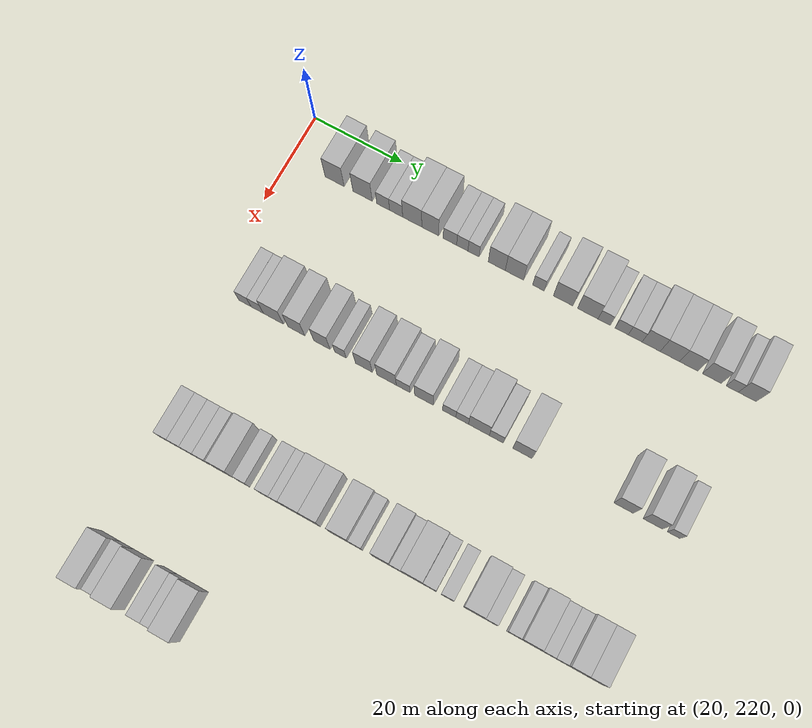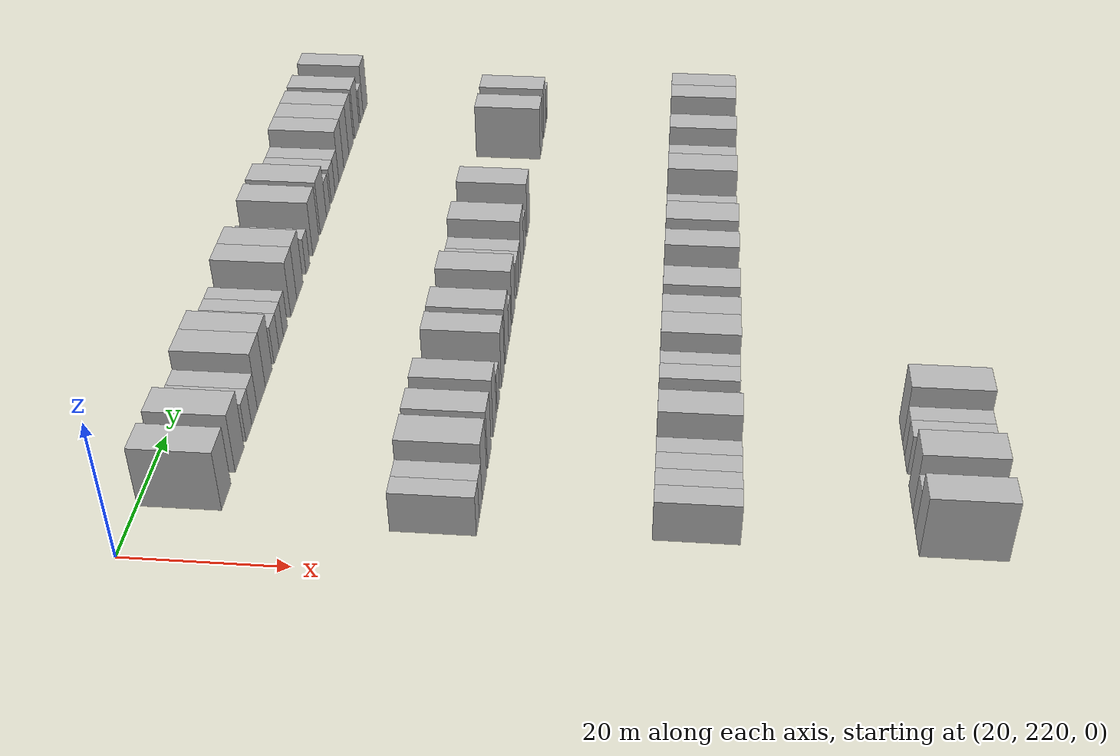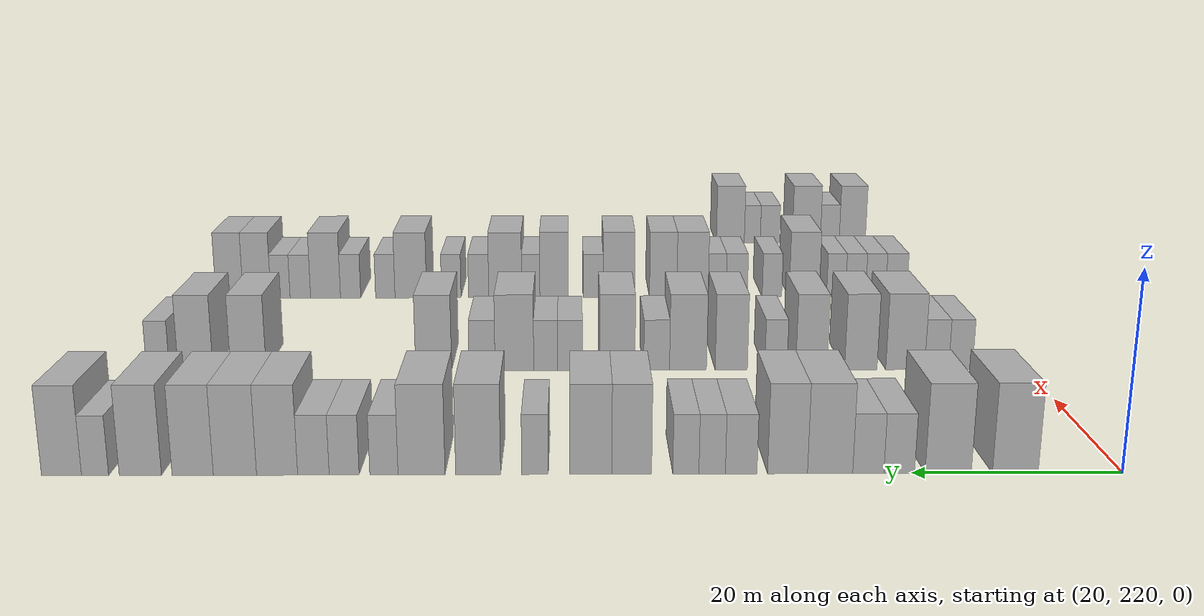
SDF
<sdf version="1.6">
 <world name="default">
  <model name="building_166">
   <static>1</static>
   <pose>25.0000 230.2021 0 0.000000 0.000000 0.000000</pose>
   <link name="link">
    <pose>0 0 4.50 0 0 0</pose>
    <collision name="collision"><geometry><box><size>10.0000 4.3413 9.0000</size></box></geometry></collision>
    <visual name="visual">
     <cast_shadows>0</cast_shadows>
     <geometry><box><size>10.0000 4.3413 9.0000</size></box></geometry>
     <material>
      <script>
       <uri>model://HANNAS_wall/materials/scripts</uri>
       <uri>model://HANNAS_wall/materials/textures</uri>
       <name>vrc/HANNAS_wall</name>
      </script>
     </material>
    </visual>
   </link>
  </model>
  <model name="building_167">
   <static>1</static>
   <pose>25.0000 236.5596 0 0.000000 0.000000 0.000000</pose>
   <link name="link">
    <pose>0 0 4.50 0 0 0</pose>
    <collision name="collision"><geometry><box><size>10.0000 4.3737 9.0000</size></box></geometry></collision>
    <visual name="visual">
     <cast_shadows>0</cast_shadows>
     <geometry><box><size>10.0000 4.3737 9.0000</size></box></geometry>
     <material>
      <script>
       <uri>model://HANNAS_wall/materials/scripts</uri>
       <uri>model://HANNAS_wall/materials/textures</uri>
       <name>vrc/HANNAS_wall</name>
      </script>
     </material>
    </visual>
   </link>
  </model>
  <model name="building_168">
   <static>1</static>
   <pose>25.0000 241.2003 0 0.000000 0.000000 0.000000</pose>
   <link name="link">
    <pose>0 0 3.00 0 0 0</pose>
    <collision name="collision"><geometry><box><size>10.0000 2.9076 6.0000</size></box></geometry></collision>
    <visual name="visual">
     <cast_shadows>0</cast_shadows>
     <geometry><box><size>10.0000 2.9076 6.0000</size></box></geometry>
     <material>
      <script>
       <uri>model://HANNAS_wall/materials/scripts</uri>
       <uri>model://HANNAS_wall/materials/textures</uri>
       <name>vrc/HANNAS_wall</name>
      </script>
     </material>
    </visual>
   </link>
  </model>
  <model name="building_169">
   <static>1</static>
   <pose>25.0000 244.1268 0 0.000000 0.000000 0.000000</pose>
   <link name="link">
    <pose>0 0 3.00 0 0 0</pose>
    <collision name="collision"><geometry><box><size>10.0000 2.9455 6.0000</size></box></geometry></collision>
    <visual name="visual">
     <cast_shadows>0</cast_shadows>
     <geometry><box><size>10.0000 2.9455 6.0000</size></box></geometry>
     <material>
      <script>
       <uri>model://HANNAS_wall/materials/scripts</uri>
       <uri>model://HANNAS_wall/materials/textures</uri>
       <name>vrc/HANNAS_wall</name>
      </script>
     </material>
    </visual>
   </link>
  </model>
  <model name="building_170">
   <static>1</static>
   <pose>25.0000 247.7401 0 0.000000 0.000000 0.000000</pose>
   <link name="link">
    <pose>0 0 4.50 0 0 0</pose>
    <collision name="collision"><geometry><box><size>10.0000 4.2810 9.0000</size></box></geometry></collision>
    <visual name="visual">
     <cast_shadows>0</cast_shadows>
     <geometry><box><size>10.0000 4.2810 9.0000</size></box></geometry>
     <material>
      <script>
       <uri>model://HANNAS_wall/materials/scripts</uri>
       <uri>model://HANNAS_wall/materials/textures</uri>
       <name>vrc/HANNAS_wall</name>
      </script>
     </material>
    </visual>
   </link>
  </model>
  <model name="building_171">
   <static>1</static>
   <pose>25.0000 251.7678 0 0.000000 0.000000 0.000000</pose>
   <link name="link">
    <pose>0 0 4.50 0 0 0</pose>
    <collision name="collision"><geometry><box><size>10.0000 3.7744 9.0000</size></box></geometry></collision>
    <visual name="visual">
     <cast_shadows>0</cast_shadows>
     <geometry><box><size>10.0000 3.7744 9.0000</size></box></geometry>
     <material>
      <script>
       <uri>model://HANNAS_wall/materials/scripts</uri>
       <uri>model://HANNAS_wall/materials/textures</uri>
       <name>vrc/HANNAS_wall</name>
      </script>
     </material>
    </visual>
   </link>
  </model>
  <model name="building_172">
   <static>1</static>
   <pose>25.0000 256.1478 0 0.000000 0.000000 0.000000</pose>
   <link name="link">
    <pose>0 0 3.00 0 0 0</pose>
    <collision name="collision"><geometry><box><size>10.0000 2.9855 6.0000</size></box></geometry></collision>
    <visual name="visual">
     <cast_shadows>0</cast_shadows>
     <geometry><box><size>10.0000 2.9855 6.0000</size></box></geometry>
     <material>
      <script>
       <uri>model://HANNAS_wall/materials/scripts</uri>
       <uri>model://HANNAS_wall/materials/textures</uri>
       <name>vrc/HANNAS_wall</name>
      </script>
     </material>
    </visual>
   </link>
  </model>
  <model name="building_173">
   <static>1</static>
   <pose>25.0000 258.8921 0 0.000000 0.000000 0.000000</pose>
   <link name="link">
    <pose>0 0 3.00 0 0 0</pose>
    <collision name="collision"><geometry><box><size>10.0000 2.5031 6.0000</size></box></geometry></collision>
    <visual name="visual">
     <cast_shadows>0</cast_shadows>
     <geometry><box><size>10.0000 2.5031 6.0000</size></box></geometry>
     <material>
      <script>
       <uri>model://HANNAS_wall/materials/scripts</uri>
       <uri>model://HANNAS_wall/materials/textures</uri>
       <name>vrc/HANNAS_wall</name>
      </script>
     </material>
    </visual>
   </link>
  </model>
  <model name="building_174">
   <static>1</static>
   <pose>25.0000 261.3764 0 0.000000 0.000000 0.000000</pose>
   <link name="link">
    <pose>0 0 3.00 0 0 0</pose>
    <collision name="collision"><geometry><box><size>10.0000 2.4656 6.0000</size></box></geometry></collision>
    <visual name="visual">
     <cast_shadows>0</cast_shadows>
     <geometry><box><size>10.0000 2.4656 6.0000</size></box></geometry>
     <material>
      <script>
       <uri>model://HANNAS_wall/materials/scripts</uri>
       <uri>model://HANNAS_wall/materials/textures</uri>
       <name>vrc/HANNAS_wall</name>
      </script>
     </material>
    </visual>
   </link>
  </model>
  <model name="building_175">
   <static>1</static>
   <pose>25.0000 266.4839 0 0.000000 0.000000 0.000000</pose>
   <link name="link">
    <pose>0 0 4.50 0 0 0</pose>
    <collision name="collision"><geometry><box><size>10.0000 3.7495 9.0000</size></box></geometry></collision>
    <visual name="visual">
     <cast_shadows>0</cast_shadows>
     <geometry><box><size>10.0000 3.7495 9.0000</size></box></geometry>
     <material>
      <script>
       <uri>model://HANNAS_wall/materials/scripts</uri>
       <uri>model://HANNAS_wall/materials/textures</uri>
       <name>vrc/HANNAS_wall</name>
      </script>
     </material>
    </visual>
   </link>
  </model>
  <model name="building_176">
   <static>1</static>
   <pose>25.0000 270.3573 0 0.000000 0.000000 0.000000</pose>
   <link name="link">
    <pose>0 0 4.50 0 0 0</pose>
    <collision name="collision"><geometry><box><size>10.0000 3.9973 9.0000</size></box></geometry></collision>
    <visual name="visual">
     <cast_shadows>0</cast_shadows>
     <geometry><box><size>10.0000 3.9973 9.0000</size></box></geometry>
     <material>
      <script>
       <uri>model://HANNAS_wall/materials/scripts</uri>
       <uri>model://HANNAS_wall/materials/textures</uri>
       <name>vrc/HANNAS_wall</name>
      </script>
     </material>
    </visual>
   </link>
  </model>
  <model name="building_177">
   <static>1</static>
   <pose>25.0000 275.6093 0 0.000000 0.000000 0.000000</pose>
   <link name="link">
    <pose>0 0 3.00 0 0 0</pose>
    <collision name="collision"><geometry><box><size>10.0000 2.5067 6.0000</size></box></geometry></collision>
    <visual name="visual">
     <cast_shadows>0</cast_shadows>
     <geometry><box><size>10.0000 2.5067 6.0000</size></box></geometry>
     <material>
      <script>
       <uri>model://HANNAS_wall/materials/scripts</uri>
       <uri>model://HANNAS_wall/materials/textures</uri>
       <name>vrc/HANNAS_wall</name>
      </script>
     </material>
    </visual>
   </link>
  </model>
  <model name="building_178">
   <static>1</static>
   <pose>25.0000 280.9778 0 0.000000 0.000000 0.000000</pose>
   <link name="link">
    <pose>0 0 4.50 0 0 0</pose>
    <collision name="collision"><geometry><box><size>10.0000 4.2303 9.0000</size></box></geometry></collision>
    <visual name="visual">
     <cast_shadows>0</cast_shadows>
     <geometry><box><size>10.0000 4.2303 9.0000</size></box></geometry>
     <material>
      <script>
       <uri>model://HANNAS_wall/materials/scripts</uri>
       <uri>model://HANNAS_wall/materials/textures</uri>
       <name>vrc/HANNAS_wall</name>
      </script>
     </material>
    </visual>
   </link>
  </model>
  <model name="building_179">
   <static>1</static>
   <pose>25.0000 286.3091 0 0.000000 0.000000 0.000000</pose>
   <link name="link">
    <pose>0 0 4.50 0 0 0</pose>
    <collision name="collision"><geometry><box><size>10.0000 4.4323 9.0000</size></box></geometry></collision>
    <visual name="visual">
     <cast_shadows>0</cast_shadows>
     <geometry><box><size>10.0000 4.4323 9.0000</size></box></geometry>
     <material>
      <script>
       <uri>model://HANNAS_wall/materials/scripts</uri>
       <uri>model://HANNAS_wall/materials/textures</uri>
       <name>vrc/HANNAS_wall</name>
      </script>
     </material>
    </visual>
   </link>
  </model>
  <model name="building_180">
   <static>1</static>
   <pose>25.0000 289.8551 0 0.000000 0.000000 0.000000</pose>
   <link name="link">
    <pose>0 0 3.00 0 0 0</pose>
    <collision name="collision"><geometry><box><size>10.0000 2.6596 6.0000</size></box></geometry></collision>
    <visual name="visual">
     <cast_shadows>0</cast_shadows>
     <geometry><box><size>10.0000 2.6596 6.0000</size></box></geometry>
     <material>
      <script>
       <uri>model://HANNAS_wall/materials/scripts</uri>
       <uri>model://HANNAS_wall/materials/textures</uri>
       <name>vrc/HANNAS_wall</name>
      </script>
     </material>
    </visual>
   </link>
  </model>
  <model name="building_181">
   <static>1</static>
   <pose>25.0000 293.5975 0 0.000000 0.000000 0.000000</pose>
   <link name="link">
    <pose>0 0 3.00 0 0 0</pose>
    <collision name="collision"><geometry><box><size>10.0000 2.8252 6.0000</size></box></geometry></collision>
    <visual name="visual">
     <cast_shadows>0</cast_shadows>
     <geometry><box><size>10.0000 2.8252 6.0000</size></box></geometry>
     <material>
      <script>
       <uri>model://HANNAS_wall/materials/scripts</uri>
       <uri>model://HANNAS_wall/materials/textures</uri>
       <name>vrc/HANNAS_wall</name>
      </script>
     </material>
    </visual>
   </link>
  </model>
  <model name="building_182">
   <static>1</static>
   <pose>25.0000 296.4953 0 0.000000 0.000000 0.000000</pose>
   <link name="link">
    <pose>0 0 3.00 0 0 0</pose>
    <collision name="collision"><geometry><box><size>10.0000 2.9705 6.0000</size></box></geometry></collision>
    <visual name="visual">
     <cast_shadows>0</cast_shadows>
     <geometry><box><size>10.0000 2.9705 6.0000</size></box></geometry>
     <material>
      <script>
       <uri>model://HANNAS_wall/materials/scripts</uri>
       <uri>model://HANNAS_wall/materials/textures</uri>
       <name>vrc/HANNAS_wall</name>
      </script>
     </material>
    </visual>
   </link>
  </model>
  <model name="building_183">
   <static>1</static>
   <pose>25.0000 299.9122 0 0.000000 0.000000 0.000000</pose>
   <link name="link">
    <pose>0 0 4.50 0 0 0</pose>
    <collision name="collision"><geometry><box><size>10.0000 3.8633 9.0000</size></box></geometry></collision>
    <visual name="visual">
     <cast_shadows>0</cast_shadows>
     <geometry><box><size>10.0000 3.8633 9.0000</size></box></geometry>
     <material>
      <script>
       <uri>model://HANNAS_wall/materials/scripts</uri>
       <uri>model://HANNAS_wall/materials/textures</uri>
       <name>vrc/HANNAS_wall</name>
      </script>
     </material>
    </visual>
   </link>
  </model>
  <model name="building_184">
   <static>1</static>
   <pose>25.0000 303.8792 0 0.000000 0.000000 0.000000</pose>
   <link name="link">
    <pose>0 0 4.50 0 0 0</pose>
    <collision name="collision"><geometry><box><size>10.0000 4.0708 9.0000</size></box></geometry></collision>
    <visual name="visual">
     <cast_shadows>0</cast_shadows>
     <geometry><box><size>10.0000 4.0708 9.0000</size></box></geometry>
     <material>
      <script>
       <uri>model://HANNAS_wall/materials/scripts</uri>
       <uri>model://HANNAS_wall/materials/textures</uri>
       <name>vrc/HANNAS_wall</name>
      </script>
     </material>
    </visual>
   </link>
  </model>
  <model name="building_185">
   <static>1</static>
   <pose>25.0000 307.8496 0 0.000000 0.000000 0.000000</pose>
   <link name="link">
    <pose>0 0 4.50 0 0 0</pose>
    <collision name="collision"><geometry><box><size>10.0000 3.8699 9.0000</size></box></geometry></collision>
    <visual name="visual">
     <cast_shadows>0</cast_shadows>
     <geometry><box><size>10.0000 3.8699 9.0000</size></box></geometry>
     <material>
      <script>
       <uri>model://HANNAS_wall/materials/scripts</uri>
       <uri>model://HANNAS_wall/materials/textures</uri>
       <name>vrc/HANNAS_wall</name>
      </script>
     </material>
    </visual>
   </link>
  </model>
  <model name="building_186">
   <static>1</static>
   <pose>25.0000 312.7663 0 0.000000 0.000000 0.000000</pose>
   <link name="link">
    <pose>0 0 4.50 0 0 0</pose>
    <collision name="collision"><geometry><box><size>10.0000 3.9637 9.0000</size></box></geometry></collision>
    <visual name="visual">
     <cast_shadows>0</cast_shadows>
     <geometry><box><size>10.0000 3.9637 9.0000</size></box></geometry>
     <material>
      <script>
       <uri>model://HANNAS_wall/materials/scripts</uri>
       <uri>model://HANNAS_wall/materials/textures</uri>
       <name>vrc/HANNAS_wall</name>
      </script>
     </material>
    </visual>
   </link>
  </model>
  <model name="building_187">
   <static>1</static>
   <pose>25.0000 317.0218 0 0.000000 0.000000 0.000000</pose>
   <link name="link">
    <pose>0 0 3.00 0 0 0</pose>
    <collision name="collision"><geometry><box><size>10.0000 2.5471 6.0000</size></box></geometry></collision>
    <visual name="visual">
     <cast_shadows>0</cast_shadows>
     <geometry><box><size>10.0000 2.5471 6.0000</size></box></geometry>
     <material>
      <script>
       <uri>model://HANNAS_wall/materials/scripts</uri>
       <uri>model://HANNAS_wall/materials/textures</uri>
       <name>vrc/HANNAS_wall</name>
      </script>
     </material>
    </visual>
   </link>
  </model>
  <model name="building_188">
   <static>1</static>
   <pose>25.0000 320.1728 0 0.000000 0.000000 0.000000</pose>
   <link name="link">
    <pose>0 0 4.50 0 0 0</pose>
    <collision name="collision"><geometry><box><size>10.0000 3.7549 9.0000</size></box></geometry></collision>
    <visual name="visual">
     <cast_shadows>0</cast_shadows>
     <geometry><box><size>10.0000 3.7549 9.0000</size></box></geometry>
     <material>
      <script>
       <uri>model://HANNAS_wall/materials/scripts</uri>
       <uri>model://HANNAS_wall/materials/textures</uri>
       <name>vrc/HANNAS_wall</name>
      </script>
     </material>
    </visual>
   </link>
  </model>
  <model name="building_395">
   <static>1</static>
   <pose>55.0000 227.5846 0 0.000000 0.000000 0.000000</pose>
   <link name="link">
    <pose>0 0 3.00 0 0 0</pose>
    <collision name="collision"><geometry><box><size>10.0000 2.7325 6.0000</size></box></geometry></collision>
    <visual name="visual">
     <cast_shadows>0</cast_shadows>
     <geometry><box><size>10.0000 2.7325 6.0000</size></box></geometry>
     <material>
      <script>
       <uri>model://HANNAS_wall/materials/scripts</uri>
       <uri>model://HANNAS_wall/materials/textures</uri>
       <name>vrc/HANNAS_wall</name>
      </script>
     </material>
    </visual>
   </link>
  </model>
  <model name="building_396">
   <static>1</static>
   <pose>55.0000 230.3314 0 0.000000 0.000000 0.000000</pose>
   <link name="link">
    <pose>0 0 3.00 0 0 0</pose>
    <collision name="collision"><geometry><box><size>10.0000 2.7609 6.0000</size></box></geometry></collision>
    <visual name="visual">
     <cast_shadows>0</cast_shadows>
     <geometry><box><size>10.0000 2.7609 6.0000</size></box></geometry>
     <material>
      <script>
       <uri>model://HANNAS_wall/materials/scripts</uri>
       <uri>model://HANNAS_wall/materials/textures</uri>
       <name>vrc/HANNAS_wall</name>
      </script>
     </material>
    </visual>
   </link>
  </model>
  <model name="building_397">
   <static>1</static>
   <pose>55.0000 233.9455 0 0.000000 0.000000 0.000000</pose>
   <link name="link">
    <pose>0 0 4.50 0 0 0</pose>
    <collision name="collision"><geometry><box><size>10.0000 4.4673 9.0000</size></box></geometry></collision>
    <visual name="visual">
     <cast_shadows>0</cast_shadows>
     <geometry><box><size>10.0000 4.4673 9.0000</size></box></geometry>
     <material>
      <script>
       <uri>model://HANNAS_wall/materials/scripts</uri>
       <uri>model://HANNAS_wall/materials/textures</uri>
       <name>vrc/HANNAS_wall</name>
      </script>
     </material>
    </visual>
   </link>
  </model>
  <model name="building_398">
   <static>1</static>
   <pose>55.0000 239.0414 0 0.000000 0.000000 0.000000</pose>
   <link name="link">
    <pose>0 0 4.50 0 0 0</pose>
    <collision name="collision"><geometry><box><size>10.0000 3.7247 9.0000</size></box></geometry></collision>
    <visual name="visual">
     <cast_shadows>0</cast_shadows>
     <geometry><box><size>10.0000 3.7247 9.0000</size></box></geometry>
     <material>
      <script>
       <uri>model://HANNAS_wall/materials/scripts</uri>
       <uri>model://HANNAS_wall/materials/textures</uri>
       <name>vrc/HANNAS_wall</name>
      </script>
     </material>
    </visual>
   </link>
  </model>
  <model name="building_399">
   <static>1</static>
   <pose>55.0000 244.7040 0 0.000000 0.000000 0.000000</pose>
   <link name="link">
    <pose>0 0 4.50 0 0 0</pose>
    <collision name="collision"><geometry><box><size>10.0000 3.6004 9.0000</size></box></geometry></collision>
    <visual name="visual">
     <cast_shadows>0</cast_shadows>
     <geometry><box><size>10.0000 3.6004 9.0000</size></box></geometry>
     <material>
      <script>
       <uri>model://HANNAS_wall/materials/scripts</uri>
       <uri>model://HANNAS_wall/materials/textures</uri>
       <name>vrc/HANNAS_wall</name>
      </script>
     </material>
    </visual>
   </link>
  </model>
  <model name="building_400">
   <static>1</static>
   <pose>55.0000 248.7788 0 0.000000 0.000000 0.000000</pose>
   <link name="link">
    <pose>0 0 3.00 0 0 0</pose>
    <collision name="collision"><geometry><box><size>10.0000 2.5493 6.0000</size></box></geometry></collision>
    <visual name="visual">
     <cast_shadows>0</cast_shadows>
     <geometry><box><size>10.0000 2.5493 6.0000</size></box></geometry>
     <material>
      <script>
       <uri>model://HANNAS_wall/materials/scripts</uri>
       <uri>model://HANNAS_wall/materials/textures</uri>
       <name>vrc/HANNAS_wall</name>
      </script>
     </material>
    </visual>
   </link>
  </model>
  <model name="building_401">
   <static>1</static>
   <pose>55.0000 253.8984 0 0.000000 0.000000 0.000000</pose>
   <link name="link">
    <pose>0 0 4.50 0 0 0</pose>
    <collision name="collision"><geometry><box><size>10.0000 3.6897 9.0000</size></box></geometry></collision>
    <visual name="visual">
     <cast_shadows>0</cast_shadows>
     <geometry><box><size>10.0000 3.6897 9.0000</size></box></geometry>
     <material>
      <script>
       <uri>model://HANNAS_wall/materials/scripts</uri>
       <uri>model://HANNAS_wall/materials/textures</uri>
       <name>vrc/HANNAS_wall</name>
      </script>
     </material>
    </visual>
   </link>
  </model>
  <model name="building_402">
   <static>1</static>
   <pose>55.0000 258.8559 0 0.000000 0.000000 0.000000</pose>
   <link name="link">
    <pose>0 0 4.50 0 0 0</pose>
    <collision name="collision"><geometry><box><size>10.0000 4.2253 9.0000</size></box></geometry></collision>
    <visual name="visual">
     <cast_shadows>0</cast_shadows>
     <geometry><box><size>10.0000 4.2253 9.0000</size></box></geometry>
     <material>
      <script>
       <uri>model://HANNAS_wall/materials/scripts</uri>
       <uri>model://HANNAS_wall/materials/textures</uri>
       <name>vrc/HANNAS_wall</name>
      </script>
     </material>
    </visual>
   </link>
  </model>
  <model name="building_403">
   <static>1</static>
   <pose>55.0000 262.4476 0 0.000000 0.000000 0.000000</pose>
   <link name="link">
    <pose>0 0 3.00 0 0 0</pose>
    <collision name="collision"><geometry><box><size>10.0000 2.9582 6.0000</size></box></geometry></collision>
    <visual name="visual">
     <cast_shadows>0</cast_shadows>
     <geometry><box><size>10.0000 2.9582 6.0000</size></box></geometry>
     <material>
      <script>
       <uri>model://HANNAS_wall/materials/scripts</uri>
       <uri>model://HANNAS_wall/materials/textures</uri>
       <name>vrc/HANNAS_wall</name>
      </script>
     </material>
    </visual>
   </link>
  </model>
  <model name="building_404">
   <static>1</static>
   <pose>55.0000 266.9340 0 0.000000 0.000000 0.000000</pose>
   <link name="link">
    <pose>0 0 4.50 0 0 0</pose>
    <collision name="collision"><geometry><box><size>10.0000 4.0146 9.0000</size></box></geometry></collision>
    <visual name="visual">
     <cast_shadows>0</cast_shadows>
     <geometry><box><size>10.0000 4.0146 9.0000</size></box></geometry>
     <material>
      <script>
       <uri>model://HANNAS_wall/materials/scripts</uri>
       <uri>model://HANNAS_wall/materials/textures</uri>
       <name>vrc/HANNAS_wall</name>
      </script>
     </material>
    </visual>
   </link>
  </model>
  <model name="building_405">
   <static>1</static>
   <pose>55.0000 272.3710 0 0.000000 0.000000 0.000000</pose>
   <link name="link">
    <pose>0 0 3.00 0 0 0</pose>
    <collision name="collision"><geometry><box><size>10.0000 2.8595 6.0000</size></box></geometry></collision>
    <visual name="visual">
     <cast_shadows>0</cast_shadows>
     <geometry><box><size>10.0000 2.8595 6.0000</size></box></geometry>
     <material>
      <script>
       <uri>model://HANNAS_wall/materials/scripts</uri>
       <uri>model://HANNAS_wall/materials/textures</uri>
       <name>vrc/HANNAS_wall</name>
      </script>
     </material>
    </visual>
   </link>
  </model>
  <model name="building_406">
   <static>1</static>
   <pose>55.0000 275.1549 0 0.000000 0.000000 0.000000</pose>
   <link name="link">
    <pose>0 0 3.00 0 0 0</pose>
    <collision name="collision"><geometry><box><size>10.0000 2.7083 6.0000</size></box></geometry></collision>
    <visual name="visual">
     <cast_shadows>0</cast_shadows>
     <geometry><box><size>10.0000 2.7083 6.0000</size></box></geometry>
     <material>
      <script>
       <uri>model://HANNAS_wall/materials/scripts</uri>
       <uri>model://HANNAS_wall/materials/textures</uri>
       <name>vrc/HANNAS_wall</name>
      </script>
     </material>
    </visual>
   </link>
  </model>
  <model name="building_407">
   <static>1</static>
   <pose>55.0000 278.7174 0 0.000000 0.000000 0.000000</pose>
   <link name="link">
    <pose>0 0 4.50 0 0 0</pose>
    <collision name="collision"><geometry><box><size>10.0000 4.4168 9.0000</size></box></geometry></collision>
    <visual name="visual">
     <cast_shadows>0</cast_shadows>
     <geometry><box><size>10.0000 4.4168 9.0000</size></box></geometry>
     <material>
      <script>
       <uri>model://HANNAS_wall/materials/scripts</uri>
       <uri>model://HANNAS_wall/materials/textures</uri>
       <name>vrc/HANNAS_wall</name>
      </script>
     </material>
    </visual>
   </link>
  </model>
  <model name="building_408">
   <static>1</static>
   <pose>55.0000 282.4075 0 0.000000 0.000000 0.000000</pose>
   <link name="link">
    <pose>0 0 3.00 0 0 0</pose>
    <collision name="collision"><geometry><box><size>10.0000 2.9633 6.0000</size></box></geometry></collision>
    <visual name="visual">
     <cast_shadows>0</cast_shadows>
     <geometry><box><size>10.0000 2.9633 6.0000</size></box></geometry>
     <material>
      <script>
       <uri>model://HANNAS_wall/materials/scripts</uri>
       <uri>model://HANNAS_wall/materials/textures</uri>
       <name>vrc/HANNAS_wall</name>
      </script>
     </material>
    </visual>
   </link>
  </model>
  <model name="building_409">
   <static>1</static>
   <pose>55.0000 287.9423 0 0.000000 0.000000 0.000000</pose>
   <link name="link">
    <pose>0 0 4.50 0 0 0</pose>
    <collision name="collision"><geometry><box><size>10.0000 4.1063 9.0000</size></box></geometry></collision>
    <visual name="visual">
     <cast_shadows>0</cast_shadows>
     <geometry><box><size>10.0000 4.1063 9.0000</size></box></geometry>
     <material>
      <script>
       <uri>model://HANNAS_wall/materials/scripts</uri>
       <uri>model://HANNAS_wall/materials/textures</uri>
       <name>vrc/HANNAS_wall</name>
      </script>
     </material>
    </visual>
   </link>
  </model>
  <model name="building_410">
   <static>1</static>
   <pose>55.0000 309.0891 0 0.000000 0.000000 0.000000</pose>
   <link name="link">
    <pose>0 0 4.50 0 0 0</pose>
    <collision name="collision"><geometry><box><size>10.0000 4.0624 9.0000</size></box></geometry></collision>
    <visual name="visual">
     <cast_shadows>0</cast_shadows>
     <geometry><box><size>10.0000 4.0624 9.0000</size></box></geometry>
     <material>
      <script>
       <uri>model://HANNAS_wall/materials/scripts</uri>
       <uri>model://HANNAS_wall/materials/textures</uri>
       <name>vrc/HANNAS_wall</name>
      </script>
     </material>
    </visual>
   </link>
  </model>
  <model name="building_411">
   <static>1</static>
   <pose>55.0000 315.1073 0 0.000000 0.000000 0.000000</pose>
   <link name="link">
    <pose>0 0 4.50 0 0 0</pose>
    <collision name="collision"><geometry><box><size>10.0000 3.9741 9.0000</size></box></geometry></collision>
    <visual name="visual">
     <cast_shadows>0</cast_shadows>
     <geometry><box><size>10.0000 3.9741 9.0000</size></box></geometry>
     <material>
      <script>
       <uri>model://HANNAS_wall/materials/scripts</uri>
       <uri>model://HANNAS_wall/materials/textures</uri>
       <name>vrc/HANNAS_wall</name>
      </script>
     </material>
    </visual>
   </link>
  </model>
  <model name="building_412">
   <static>1</static>
   <pose>55.0000 319.3918 0 0.000000 0.000000 0.000000</pose>
   <link name="link">
    <pose>0 0 3.00 0 0 0</pose>
    <collision name="collision"><geometry><box><size>10.0000 2.5948 6.0000</size></box></geometry></collision>
    <visual name="visual">
     <cast_shadows>0</cast_shadows>
     <geometry><box><size>10.0000 2.5948 6.0000</size></box></geometry>
     <material>
      <script>
       <uri>model://HANNAS_wall/materials/scripts</uri>
       <uri>model://HANNAS_wall/materials/textures</uri>
       <name>vrc/HANNAS_wall</name>
      </script>
     </material>
    </visual>
   </link>
  </model>
  <model name="building_614">
   <static>1</static>
   <pose>85.0000 228.4832 0 0.000000 0.000000 0.000000</pose>
   <link name="link">
    <pose>0 0 3.00 0 0 0</pose>
    <collision name="collision"><geometry><box><size>10.0000 2.8495 6.0000</size></box></geometry></collision>
    <visual name="visual">
     <cast_shadows>0</cast_shadows>
     <geometry><box><size>10.0000 2.8495 6.0000</size></box></geometry>
     <material>
      <script>
       <uri>model://HANNAS_wall/materials/scripts</uri>
       <uri>model://HANNAS_wall/materials/textures</uri>
       <name>vrc/HANNAS_wall</name>
      </script>
     </material>
    </visual>
   </link>
  </model>
  <model name="building_615">
   <static>1</static>
   <pose>85.0000 231.2520 0 0.000000 0.000000 0.000000</pose>
   <link name="link">
    <pose>0 0 3.00 0 0 0</pose>
    <collision name="collision"><geometry><box><size>10.0000 2.6881 6.0000</size></box></geometry></collision>
    <visual name="visual">
     <cast_shadows>0</cast_shadows>
     <geometry><box><size>10.0000 2.6881 6.0000</size></box></geometry>
     <material>
      <script>
       <uri>model://HANNAS_wall/materials/scripts</uri>
       <uri>model://HANNAS_wall/materials/textures</uri>
       <name>vrc/HANNAS_wall</name>
      </script>
     </material>
    </visual>
   </link>
  </model>
  <model name="building_616">
   <static>1</static>
   <pose>85.0000 233.9584 0 0.000000 0.000000 0.000000</pose>
   <link name="link">
    <pose>0 0 3.00 0 0 0</pose>
    <collision name="collision"><geometry><box><size>10.0000 2.7247 6.0000</size></box></geometry></collision>
    <visual name="visual">
     <cast_shadows>0</cast_shadows>
     <geometry><box><size>10.0000 2.7247 6.0000</size></box></geometry>
     <material>
      <script>
       <uri>model://HANNAS_wall/materials/scripts</uri>
       <uri>model://HANNAS_wall/materials/textures</uri>
       <name>vrc/HANNAS_wall</name>
      </script>
     </material>
    </visual>
   </link>
  </model>
  <model name="building_617">
   <static>1</static>
   <pose>85.0000 236.5927 0 0.000000 0.000000 0.000000</pose>
   <link name="link">
    <pose>0 0 3.00 0 0 0</pose>
    <collision name="collision"><geometry><box><size>10.0000 2.5439 6.0000</size></box></geometry></collision>
    <visual name="visual">
     <cast_shadows>0</cast_shadows>
     <geometry><box><size>10.0000 2.5439 6.0000</size></box></geometry>
     <material>
      <script>
       <uri>model://HANNAS_wall/materials/scripts</uri>
       <uri>model://HANNAS_wall/materials/textures</uri>
       <name>vrc/HANNAS_wall</name>
      </script>
     </material>
    </visual>
   </link>
  </model>
  <model name="building_618">
   <static>1</static>
   <pose>85.0000 240.8892 0 0.000000 0.000000 0.000000</pose>
   <link name="link">
    <pose>0 0 4.50 0 0 0</pose>
    <collision name="collision"><geometry><box><size>10.0000 4.0491 9.0000</size></box></geometry></collision>
    <visual name="visual">
     <cast_shadows>0</cast_shadows>
     <geometry><box><size>10.0000 4.0491 9.0000</size></box></geometry>
     <material>
      <script>
       <uri>model://HANNAS_wall/materials/scripts</uri>
       <uri>model://HANNAS_wall/materials/textures</uri>
       <name>vrc/HANNAS_wall</name>
      </script>
     </material>
    </visual>
   </link>
  </model>
  <model name="building_619">
   <static>1</static>
   <pose>85.0000 245.2282 0 0.000000 0.000000 0.000000</pose>
   <link name="link">
    <pose>0 0 3.00 0 0 0</pose>
    <collision name="collision"><geometry><box><size>10.0000 2.6290 6.0000</size></box></geometry></collision>
    <visual name="visual">
     <cast_shadows>0</cast_shadows>
     <geometry><box><size>10.0000 2.6290 6.0000</size></box></geometry>
     <material>
      <script>
       <uri>model://HANNAS_wall/materials/scripts</uri>
       <uri>model://HANNAS_wall/materials/textures</uri>
       <name>vrc/HANNAS_wall</name>
      </script>
     </material>
    </visual>
   </link>
  </model>
  <model name="building_620">
   <static>1</static>
   <pose>85.0000 249.9813 0 0.000000 0.000000 0.000000</pose>
   <link name="link">
    <pose>0 0 3.00 0 0 0</pose>
    <collision name="collision"><geometry><box><size>10.0000 2.8772 6.0000</size></box></geometry></collision>
    <visual name="visual">
     <cast_shadows>0</cast_shadows>
     <geometry><box><size>10.0000 2.8772 6.0000</size></box></geometry>
     <material>
      <script>
       <uri>model://HANNAS_wall/materials/scripts</uri>
       <uri>model://HANNAS_wall/materials/textures</uri>
       <name>vrc/HANNAS_wall</name>
      </script>
     </material>
    </visual>
   </link>
  </model>
  <model name="building_621">
   <static>1</static>
   <pose>85.0000 252.6221 0 0.000000 0.000000 0.000000</pose>
   <link name="link">
    <pose>0 0 3.00 0 0 0</pose>
    <collision name="collision"><geometry><box><size>10.0000 2.4045 6.0000</size></box></geometry></collision>
    <visual name="visual">
     <cast_shadows>0</cast_shadows>
     <geometry><box><size>10.0000 2.4045 6.0000</size></box></geometry>
     <material>
      <script>
       <uri>model://HANNAS_wall/materials/scripts</uri>
       <uri>model://HANNAS_wall/materials/textures</uri>
       <name>vrc/HANNAS_wall</name>
      </script>
     </material>
    </visual>
   </link>
  </model>
  <model name="building_622">
   <static>1</static>
   <pose>85.0000 255.9319 0 0.000000 0.000000 0.000000</pose>
   <link name="link">
    <pose>0 0 4.50 0 0 0</pose>
    <collision name="collision"><geometry><box><size>10.0000 4.2151 9.0000</size></box></geometry></collision>
    <visual name="visual">
     <cast_shadows>0</cast_shadows>
     <geometry><box><size>10.0000 4.2151 9.0000</size></box></geometry>
     <material>
      <script>
       <uri>model://HANNAS_wall/materials/scripts</uri>
       <uri>model://HANNAS_wall/materials/textures</uri>
       <name>vrc/HANNAS_wall</name>
      </script>
     </material>
    </visual>
   </link>
  </model>
  <model name="building_623">
   <static>1</static>
   <pose>85.0000 259.8762 0 0.000000 0.000000 0.000000</pose>
   <link name="link">
    <pose>0 0 4.50 0 0 0</pose>
    <collision name="collision"><geometry><box><size>10.0000 3.6735 9.0000</size></box></geometry></collision>
    <visual name="visual">
     <cast_shadows>0</cast_shadows>
     <geometry><box><size>10.0000 3.6735 9.0000</size></box></geometry>
     <material>
      <script>
       <uri>model://HANNAS_wall/materials/scripts</uri>
       <uri>model://HANNAS_wall/materials/textures</uri>
       <name>vrc/HANNAS_wall</name>
      </script>
     </material>
    </visual>
   </link>
  </model>
  <model name="building_624">
   <static>1</static>
   <pose>85.0000 265.8314 0 0.000000 0.000000 0.000000</pose>
   <link name="link">
    <pose>0 0 4.50 0 0 0</pose>
    <collision name="collision"><geometry><box><size>10.0000 4.2368 9.0000</size></box></geometry></collision>
    <visual name="visual">
     <cast_shadows>0</cast_shadows>
     <geometry><box><size>10.0000 4.2368 9.0000</size></box></geometry>
     <material>
      <script>
       <uri>model://HANNAS_wall/materials/scripts</uri>
       <uri>model://HANNAS_wall/materials/textures</uri>
       <name>vrc/HANNAS_wall</name>
      </script>
     </material>
    </visual>
   </link>
  </model>
  <model name="building_625">
   <static>1</static>
   <pose>85.0000 269.2992 0 0.000000 0.000000 0.000000</pose>
   <link name="link">
    <pose>0 0 3.00 0 0 0</pose>
    <collision name="collision"><geometry><box><size>10.0000 2.6987 6.0000</size></box></geometry></collision>
    <visual name="visual">
     <cast_shadows>0</cast_shadows>
     <geometry><box><size>10.0000 2.6987 6.0000</size></box></geometry>
     <material>
      <script>
       <uri>model://HANNAS_wall/materials/scripts</uri>
       <uri>model://HANNAS_wall/materials/textures</uri>
       <name>vrc/HANNAS_wall</name>
      </script>
     </material>
    </visual>
   </link>
  </model>
  <model name="building_626">
   <static>1</static>
   <pose>85.0000 274.5497 0 0.000000 0.000000 0.000000</pose>
   <link name="link">
    <pose>0 0 4.50 0 0 0</pose>
    <collision name="collision"><geometry><box><size>10.0000 3.8023 9.0000</size></box></geometry></collision>
    <visual name="visual">
     <cast_shadows>0</cast_shadows>
     <geometry><box><size>10.0000 3.8023 9.0000</size></box></geometry>
     <material>
      <script>
       <uri>model://HANNAS_wall/materials/scripts</uri>
       <uri>model://HANNAS_wall/materials/textures</uri>
       <name>vrc/HANNAS_wall</name>
      </script>
     </material>
    </visual>
   </link>
  </model>
  <model name="building_627">
   <static>1</static>
   <pose>85.0000 277.6698 0 0.000000 0.000000 0.000000</pose>
   <link name="link">
    <pose>0 0 3.00 0 0 0</pose>
    <collision name="collision"><geometry><box><size>10.0000 2.4379 6.0000</size></box></geometry></collision>
    <visual name="visual">
     <cast_shadows>0</cast_shadows>
     <geometry><box><size>10.0000 2.4379 6.0000</size></box></geometry>
     <material>
      <script>
       <uri>model://HANNAS_wall/materials/scripts</uri>
       <uri>model://HANNAS_wall/materials/textures</uri>
       <name>vrc/HANNAS_wall</name>
      </script>
     </material>
    </visual>
   </link>
  </model>
  <model name="building_628">
   <static>1</static>
   <pose>85.0000 281.1035 0 0.000000 0.000000 0.000000</pose>
   <link name="link">
    <pose>0 0 4.50 0 0 0</pose>
    <collision name="collision"><geometry><box><size>10.0000 4.4294 9.0000</size></box></geometry></collision>
    <visual name="visual">
     <cast_shadows>0</cast_shadows>
     <geometry><box><size>10.0000 4.4294 9.0000</size></box></geometry>
     <material>
      <script>
       <uri>model://HANNAS_wall/materials/scripts</uri>
       <uri>model://HANNAS_wall/materials/textures</uri>
       <name>vrc/HANNAS_wall</name>
      </script>
     </material>
    </visual>
   </link>
  </model>
  <model name="building_629">
   <static>1</static>
   <pose>85.0000 284.6812 0 0.000000 0.000000 0.000000</pose>
   <link name="link">
    <pose>0 0 3.00 0 0 0</pose>
    <collision name="collision"><geometry><box><size>10.0000 2.7260 6.0000</size></box></geometry></collision>
    <visual name="visual">
     <cast_shadows>0</cast_shadows>
     <geometry><box><size>10.0000 2.7260 6.0000</size></box></geometry>
     <material>
      <script>
       <uri>model://HANNAS_wall/materials/scripts</uri>
       <uri>model://HANNAS_wall/materials/textures</uri>
       <name>vrc/HANNAS_wall</name>
      </script>
     </material>
    </visual>
   </link>
  </model>
  <model name="building_630">
   <static>1</static>
   <pose>85.0000 288.3512 0 0.000000 0.000000 0.000000</pose>
   <link name="link">
    <pose>0 0 3.00 0 0 0</pose>
    <collision name="collision"><geometry><box><size>10.0000 2.6141 6.0000</size></box></geometry></collision>
    <visual name="visual">
     <cast_shadows>0</cast_shadows>
     <geometry><box><size>10.0000 2.6141 6.0000</size></box></geometry>
     <material>
      <script>
       <uri>model://HANNAS_wall/materials/scripts</uri>
       <uri>model://HANNAS_wall/materials/textures</uri>
       <name>vrc/HANNAS_wall</name>
      </script>
     </material>
    </visual>
   </link>
  </model>
  <model name="building_631">
   <static>1</static>
   <pose>85.0000 293.7839 0 0.000000 0.000000 0.000000</pose>
   <link name="link">
    <pose>0 0 4.50 0 0 0</pose>
    <collision name="collision"><geometry><box><size>10.0000 4.2512 9.0000</size></box></geometry></collision>
    <visual name="visual">
     <cast_shadows>0</cast_shadows>
     <geometry><box><size>10.0000 4.2512 9.0000</size></box></geometry>
     <material>
      <script>
       <uri>model://HANNAS_wall/materials/scripts</uri>
       <uri>model://HANNAS_wall/materials/textures</uri>
       <name>vrc/HANNAS_wall</name>
      </script>
     </material>
    </visual>
   </link>
  </model>
  <model name="building_632">
   <static>1</static>
   <pose>85.0000 297.2117 0 0.000000 0.000000 0.000000</pose>
   <link name="link">
    <pose>0 0 3.00 0 0 0</pose>
    <collision name="collision"><geometry><box><size>10.0000 2.6045 6.0000</size></box></geometry></collision>
    <visual name="visual">
     <cast_shadows>0</cast_shadows>
     <geometry><box><size>10.0000 2.6045 6.0000</size></box></geometry>
     <material>
      <script>
       <uri>model://HANNAS_wall/materials/scripts</uri>
       <uri>model://HANNAS_wall/materials/textures</uri>
       <name>vrc/HANNAS_wall</name>
      </script>
     </material>
    </visual>
   </link>
  </model>
  <model name="building_633">
   <static>1</static>
   <pose>85.0000 301.8735 0 0.000000 0.000000 0.000000</pose>
   <link name="link">
    <pose>0 0 3.00 0 0 0</pose>
    <collision name="collision"><geometry><box><size>10.0000 2.7190 6.0000</size></box></geometry></collision>
    <visual name="visual">
     <cast_shadows>0</cast_shadows>
     <geometry><box><size>10.0000 2.7190 6.0000</size></box></geometry>
     <material>
      <script>
       <uri>model://HANNAS_wall/materials/scripts</uri>
       <uri>model://HANNAS_wall/materials/textures</uri>
       <name>vrc/HANNAS_wall</name>
      </script>
     </material>
    </visual>
   </link>
  </model>
  <model name="building_634">
   <static>1</static>
   <pose>85.0000 305.2358 0 0.000000 0.000000 0.000000</pose>
   <link name="link">
    <pose>0 0 4.50 0 0 0</pose>
    <collision name="collision"><geometry><box><size>10.0000 4.0055 9.0000</size></box></geometry></collision>
    <visual name="visual">
     <cast_shadows>0</cast_shadows>
     <geometry><box><size>10.0000 4.0055 9.0000</size></box></geometry>
     <material>
      <script>
       <uri>model://HANNAS_wall/materials/scripts</uri>
       <uri>model://HANNAS_wall/materials/textures</uri>
       <name>vrc/HANNAS_wall</name>
      </script>
     </material>
    </visual>
   </link>
  </model>
  <model name="building_635">
   <static>1</static>
   <pose>85.0000 308.6139 0 0.000000 0.000000 0.000000</pose>
   <link name="link">
    <pose>0 0 3.00 0 0 0</pose>
    <collision name="collision"><geometry><box><size>10.0000 2.7507 6.0000</size></box></geometry></collision>
    <visual name="visual">
     <cast_shadows>0</cast_shadows>
     <geometry><box><size>10.0000 2.7507 6.0000</size></box></geometry>
     <material>
      <script>
       <uri>model://HANNAS_wall/materials/scripts</uri>
       <uri>model://HANNAS_wall/materials/textures</uri>
       <name>vrc/HANNAS_wall</name>
      </script>
     </material>
    </visual>
   </link>
  </model>
  <model name="building_636">
   <static>1</static>
   <pose>85.0000 311.2742 0 0.000000 0.000000 0.000000</pose>
   <link name="link">
    <pose>0 0 3.00 0 0 0</pose>
    <collision name="collision"><geometry><box><size>10.0000 2.5697 6.0000</size></box></geometry></collision>
    <visual name="visual">
     <cast_shadows>0</cast_shadows>
     <geometry><box><size>10.0000 2.5697 6.0000</size></box></geometry>
     <material>
      <script>
       <uri>model://HANNAS_wall/materials/scripts</uri>
       <uri>model://HANNAS_wall/materials/textures</uri>
       <name>vrc/HANNAS_wall</name>
      </script>
     </material>
    </visual>
   </link>
  </model>
  <model name="building_637">
   <static>1</static>
   <pose>85.0000 314.4172 0 0.000000 0.000000 0.000000</pose>
   <link name="link">
    <pose>0 0 4.50 0 0 0</pose>
    <collision name="collision"><geometry><box><size>10.0000 3.7162 9.0000</size></box></geometry></collision>
    <visual name="visual">
     <cast_shadows>0</cast_shadows>
     <geometry><box><size>10.0000 3.7162 9.0000</size></box></geometry>
     <material>
      <script>
       <uri>model://HANNAS_wall/materials/scripts</uri>
       <uri>model://HANNAS_wall/materials/textures</uri>
       <name>vrc/HANNAS_wall</name>
      </script>
     </material>
    </visual>
   </link>
  </model>
  <model name="building_638">
   <static>1</static>
   <pose>85.0000 318.0902 0 0.000000 0.000000 0.000000</pose>
   <link name="link">
    <pose>0 0 4.50 0 0 0</pose>
    <collision name="collision"><geometry><box><size>10.0000 3.6299 9.0000</size></box></geometry></collision>
    <visual name="visual">
     <cast_shadows>0</cast_shadows>
     <geometry><box><size>10.0000 3.6299 9.0000</size></box></geometry>
     <material>
      <script>
       <uri>model://HANNAS_wall/materials/scripts</uri>
       <uri>model://HANNAS_wall/materials/textures</uri>
       <name>vrc/HANNAS_wall</name>
      </script>
     </material>
    </visual>
   </link>
  </model>
  <model name="building_846">
   <static>1</static>
   <pose>115.0000 228.7855 0 0.000000 0.000000 0.000000</pose>
   <link name="link">
    <pose>0 0 4.50 0 0 0</pose>
    <collision name="collision"><geometry><box><size>10.0000 4.0552 9.0000</size></box></geometry></collision>
    <visual name="visual">
     <cast_shadows>0</cast_shadows>
     <geometry><box><size>10.0000 4.0552 9.0000</size></box></geometry>
     <material>
      <script>
       <uri>model://HANNAS_wall/materials/scripts</uri>
       <uri>model://HANNAS_wall/materials/textures</uri>
       <name>vrc/HANNAS_wall</name>
      </script>
     </material>
    </visual>
   </link>
  </model>
  <model name="building_847">
   <static>1</static>
   <pose>115.0000 232.2715 0 0.000000 0.000000 0.000000</pose>
   <link name="link">
    <pose>0 0 3.00 0 0 0</pose>
    <collision name="collision"><geometry><box><size>10.0000 2.9167 6.0000</size></box></geometry></collision>
    <visual name="visual">
     <cast_shadows>0</cast_shadows>
     <geometry><box><size>10.0000 2.9167 6.0000</size></box></geometry>
     <material>
      <script>
       <uri>model://HANNAS_wall/materials/scripts</uri>
       <uri>model://HANNAS_wall/materials/textures</uri>
       <name>vrc/HANNAS_wall</name>
      </script>
     </material>
    </visual>
   </link>
  </model>
  <model name="building_848">
   <static>1</static>
   <pose>115.0000 235.9065 0 0.000000 0.000000 0.000000</pose>
   <link name="link">
    <pose>0 0 4.50 0 0 0</pose>
    <collision name="collision"><geometry><box><size>10.0000 4.3533 9.0000</size></box></geometry></collision>
    <visual name="visual">
     <cast_shadows>0</cast_shadows>
     <geometry><box><size>10.0000 4.3533 9.0000</size></box></geometry>
     <material>
      <script>
       <uri>model://HANNAS_wall/materials/scripts</uri>
       <uri>model://HANNAS_wall/materials/textures</uri>
       <name>vrc/HANNAS_wall</name>
      </script>
     </material>
    </visual>
   </link>
  </model>
  <model name="building_849">
   <static>1</static>
   <pose>115.0000 241.5564 0 0.000000 0.000000 0.000000</pose>
   <link name="link">
    <pose>0 0 3.00 0 0 0</pose>
    <collision name="collision"><geometry><box><size>10.0000 2.9465 6.0000</size></box></geometry></collision>
    <visual name="visual">
     <cast_shadows>0</cast_shadows>
     <geometry><box><size>10.0000 2.9465 6.0000</size></box></geometry>
     <material>
      <script>
       <uri>model://HANNAS_wall/materials/scripts</uri>
       <uri>model://HANNAS_wall/materials/textures</uri>
       <name>vrc/HANNAS_wall</name>
      </script>
     </material>
    </visual>
   </link>
  </model>
  <model name="building_850">
   <static>1</static>
   <pose>115.0000 244.2640 0 0.000000 0.000000 0.000000</pose>
   <link name="link">
    <pose>0 0 3.00 0 0 0</pose>
    <collision name="collision"><geometry><box><size>10.0000 2.4686 6.0000</size></box></geometry></collision>
    <visual name="visual">
     <cast_shadows>0</cast_shadows>
     <geometry><box><size>10.0000 2.4686 6.0000</size></box></geometry>
     <material>
      <script>
       <uri>model://HANNAS_wall/materials/scripts</uri>
       <uri>model://HANNAS_wall/materials/textures</uri>
       <name>vrc/HANNAS_wall</name>
      </script>
     </material>
    </visual>
   </link>
  </model>
  <model name="building_851">
   <static>1</static>
   <pose>115.0000 247.6586 0 0.000000 0.000000 0.000000</pose>
   <link name="link">
    <pose>0 0 4.50 0 0 0</pose>
    <collision name="collision"><geometry><box><size>10.0000 4.3206 9.0000</size></box></geometry></collision>
    <visual name="visual">
     <cast_shadows>0</cast_shadows>
     <geometry><box><size>10.0000 4.3206 9.0000</size></box></geometry>
     <material>
      <script>
       <uri>model://HANNAS_wall/materials/scripts</uri>
       <uri>model://HANNAS_wall/materials/textures</uri>
       <name>vrc/HANNAS_wall</name>
      </script>
     </material>
    </visual>
   </link>
  </model>
 </world>
</sdf>
